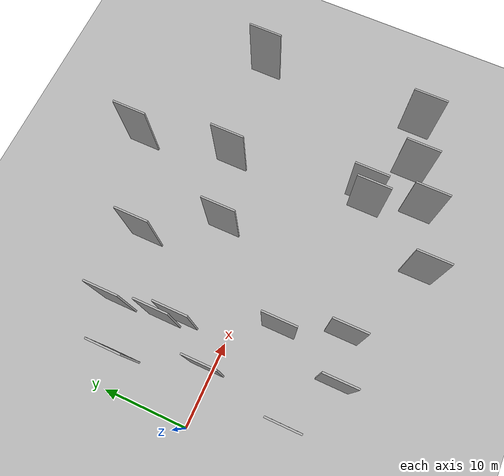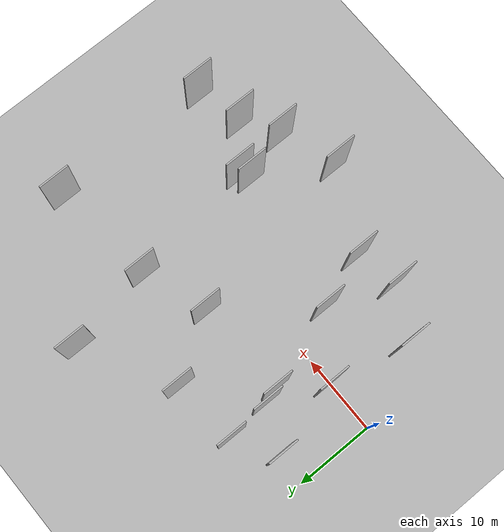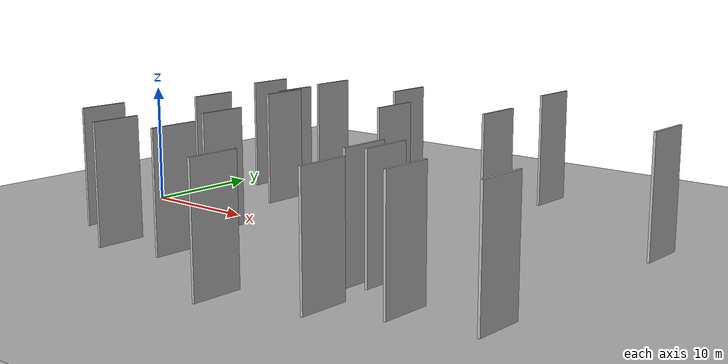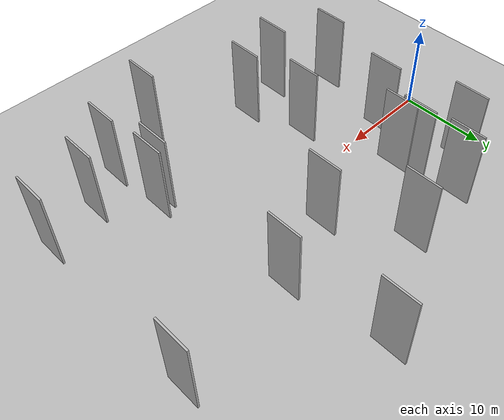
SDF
<?xml version="1.0" encoding="utf-8"?>

<sdf version="1.6">

   <world name="default">

      <gui fullscreen="0">

         <camera name="user_camera">

            <pose>-15 0 4.57585 0 0 0</pose>

            <view_controller>orbit</view_controller>

         </camera>

      </gui>

      <scene>

         <sky>

           <clouds>

             <speed>12</speed>

           </clouds>

         </sky>

         <ambient>0.4 0.4 0.4 1</ambient>

         <background>0.7 0.7 0.7 1</background>

         <shadows>1</shadows>

      </scene>

      <gravity>0 0 -9.8066</gravity>

      <magnetic_field>6e-06 2.3e-05 -4.2e-05</magnetic_field>

      <physics default="0" name="default_physics" type="ode">

         <ode>

            <solver>

               <type>quick</type>

               <iters>10</iters>

               <sor>1.0</sor>

               <use_dynamic_moi_rescaling>0</use_dynamic_moi_rescaling>

            </solver>

            <constraints>

               <cfm>0</cfm>

               <erp>0.2</erp>

               <contact_max_correcting_vel>100</contact_max_correcting_vel>

               <contact_surface_layer>0.001</contact_surface_layer>

            </constraints>

         </ode>

         <max_step_size>0.004</max_step_size>

         <real_time_factor>1</real_time_factor>

         <real_time_update_rate>250</real_time_update_rate>

      </physics>

      <light name="sun" type="directional">

         <cast_shadows>1</cast_shadows>

         <pose>0 0 10 0 0 0</pose>

         <diffuse>0.8 0.8 0.8 1</diffuse>

         <specular>0.2 0.2 0.2 1</specular>

         <attenuation>

            <range>1000</range>

            <constant>0.9</constant>

            <linear>0.01</linear>

            <quadratic>0.001</quadratic>

         </attenuation>

         <direction>-0.5 0.1 -0.9</direction>

      </light>

      <include>

         <name>ground_plane_1</name>

         <uri>model://HANNAS_ground_plane</uri>

         <pose>0 0 0  0 0 0</pose>

      </include>

      <include>

         <name>ground_plane_2</name>

         <uri>model://HANNAS_ground_plane</uri>

         <pose>100 0 0  0 0 0</pose>

      </include>

      <model name="HANNAS_wall_1">

         <static>1</static>

         <pose frame="">37.4713 -11.7446 0.0 0.000000 0.000000 1.570796</pose>

         <link name="link">

            <pose frame="">0 0 5.00 0 0 0</pose>

            <collision name="collision">

               <geometry>

                  <box>

                     <size>4.00 0.2 10.00</size>

                  </box>

               </geometry>

               <max_contacts>10</max_contacts>

               <surface>

                  <contact>

                     <ode/>

                  </contact>

                  <bounce/>

                  <friction>

                     <torsional>

                        <ode/>

                     </torsional>

                     <ode/>

                  </friction>

               </surface>

            </collision>

            <visual name="visual">

               <cast_shadows>0</cast_shadows>

               <geometry>

                  <box>

                     <size>4.00 0.2 10.00</size>

                  </box>

               </geometry>

               <material>

                  <script>

                     <uri>model://HANNAS_wall/materials/scripts</uri>

                     <uri>model://HANNAS_wall/materials/textures</uri>

                     <name>vrc/HANNAS_wall</name>

                  </script>

               </material>

            </visual>

            <self_collide>0</self_collide>

            <enable_wind>0</enable_wind>

            <kinematic>0</kinematic>

         </link>

      </model>

      <model name="HANNAS_wall_2">

         <static>1</static>

         <pose frame="">31.2483 -8.3936 0.0 0.000000 0.000000 1.570796</pose>

         <link name="link">

            <pose frame="">0 0 5.00 0 0 0</pose>

            <collision name="collision">

               <geometry>

                  <box>

                     <size>4.00 0.2 10.00</size>

                  </box>

               </geometry>

               <max_contacts>10</max_contacts>

               <surface>

                  <contact>

                     <ode/>

                  </contact>

                  <bounce/>

                  <friction>

                     <torsional>

                        <ode/>

                     </torsional>

                     <ode/>

                  </friction>

               </surface>

            </collision>

            <visual name="visual">

               <cast_shadows>0</cast_shadows>

               <geometry>

                  <box>

                     <size>4.00 0.2 10.00</size>

                  </box>

               </geometry>

               <material>

                  <script>

                     <uri>model://HANNAS_wall/materials/scripts</uri>

                     <uri>model://HANNAS_wall/materials/textures</uri>

                     <name>vrc/HANNAS_wall</name>

                  </script>

               </material>

            </visual>

            <self_collide>0</self_collide>

            <enable_wind>0</enable_wind>

            <kinematic>0</kinematic>

         </link>

      </model>

      <model name="HANNAS_wall_3">

         <static>1</static>

         <pose frame="">32.4895 -7.6483 0.0 0.000000 0.000000 1.570796</pose>

         <link name="link">

            <pose frame="">0 0 5.00 0 0 0</pose>

            <collision name="collision">

               <geometry>

                  <box>

                     <size>4.00 0.2 10.00</size>

                  </box>

               </geometry>

               <max_contacts>10</max_contacts>

               <surface>

                  <contact>

                     <ode/>

                  </contact>

                  <bounce/>

                  <friction>

                     <torsional>

                        <ode/>

                     </torsional>

                     <ode/>

                  </friction>

               </surface>

            </collision>

            <visual name="visual">

               <cast_shadows>0</cast_shadows>

               <geometry>

                  <box>

                     <size>4.00 0.2 10.00</size>

                  </box>

               </geometry>

               <material>

                  <script>

                     <uri>model://HANNAS_wall/materials/scripts</uri>

                     <uri>model://HANNAS_wall/materials/textures</uri>

                     <name>vrc/HANNAS_wall</name>

                  </script>

               </material>

            </visual>

            <self_collide>0</self_collide>

            <enable_wind>0</enable_wind>

            <kinematic>0</kinematic>

         </link>

      </model>

      <model name="HANNAS_wall_4">

         <static>1</static>

         <pose frame="">43.5361 -10.4436 0.0 0.000000 0.000000 1.570796</pose>

         <link name="link">

            <pose frame="">0 0 5.00 0 0 0</pose>

            <collision name="collision">

               <geometry>

                  <box>

                     <size>4.00 0.2 10.00</size>

                  </box>

               </geometry>

               <max_contacts>10</max_contacts>

               <surface>

                  <contact>

                     <ode/>

                  </contact>

                  <bounce/>

                  <friction>

                     <torsional>

                        <ode/>

                     </torsional>

                     <ode/>

                  </friction>

               </surface>

            </collision>

            <visual name="visual">

               <cast_shadows>0</cast_shadows>

               <geometry>

                  <box>

                     <size>4.00 0.2 10.00</size>

                  </box>

               </geometry>

               <material>

                  <script>

                     <uri>model://HANNAS_wall/materials/scripts</uri>

                     <uri>model://HANNAS_wall/materials/textures</uri>

                     <name>vrc/HANNAS_wall</name>

                  </script>

               </material>

            </visual>

            <self_collide>0</self_collide>

            <enable_wind>0</enable_wind>

            <kinematic>0</kinematic>

         </link>

      </model>

      <model name="HANNAS_wall_5">

         <static>1</static>

         <pose frame="">33.0475 -14.4032 0.0 0.000000 0.000000 1.570796</pose>

         <link name="link">

            <pose frame="">0 0 5.00 0 0 0</pose>

            <collision name="collision">

               <geometry>

                  <box>

                     <size>4.00 0.2 10.00</size>

                  </box>

               </geometry>

               <max_contacts>10</max_contacts>

               <surface>

                  <contact>

                     <ode/>

                  </contact>

                  <bounce/>

                  <friction>

                     <torsional>

                        <ode/>

                     </torsional>

                     <ode/>

                  </friction>

               </surface>

            </collision>

            <visual name="visual">

               <cast_shadows>0</cast_shadows>

               <geometry>

                  <box>

                     <size>4.00 0.2 10.00</size>

                  </box>

               </geometry>

               <material>

                  <script>

                     <uri>model://HANNAS_wall/materials/scripts</uri>

                     <uri>model://HANNAS_wall/materials/textures</uri>

                     <name>vrc/HANNAS_wall</name>

                  </script>

               </material>

            </visual>

            <self_collide>0</self_collide>

            <enable_wind>0</enable_wind>

            <kinematic>0</kinematic>

         </link>

      </model>

      <model name="HANNAS_wall_6">

         <static>1</static>

         <pose frame="">22.1428 5.8418 0.0 0.000000 0.000000 1.570796</pose>

         <link name="link">

            <pose frame="">0 0 5.00 0 0 0</pose>

            <collision name="collision">

               <geometry>

                  <box>

                     <size>4.00 0.2 10.00</size>

                  </box>

               </geometry>

               <max_contacts>10</max_contacts>

               <surface>

                  <contact>

                     <ode/>

                  </contact>

                  <bounce/>

                  <friction>

                     <torsional>

                        <ode/>

                     </torsional>

                     <ode/>

                  </friction>

               </surface>

            </collision>

            <visual name="visual">

               <cast_shadows>0</cast_shadows>

               <geometry>

                  <box>

                     <size>4.00 0.2 10.00</size>

                  </box>

               </geometry>

               <material>

                  <script>

                     <uri>model://HANNAS_wall/materials/scripts</uri>

                     <uri>model://HANNAS_wall/materials/textures</uri>

                     <name>vrc/HANNAS_wall</name>

                  </script>

               </material>

            </visual>

            <self_collide>0</self_collide>

            <enable_wind>0</enable_wind>

            <kinematic>0</kinematic>

         </link>

      </model>

      <model name="HANNAS_wall_7">

         <static>1</static>

         <pose frame="">6.6601 0.4806 0.0 0.000000 0.000000 1.570796</pose>

         <link name="link">

            <pose frame="">0 0 5.00 0 0 0</pose>

            <collision name="collision">

               <geometry>

                  <box>

                     <size>4.00 0.2 10.00</size>

                  </box>

               </geometry>

               <max_contacts>10</max_contacts>

               <surface>

                  <contact>

                     <ode/>

                  </contact>

                  <bounce/>

                  <friction>

                     <torsional>

                        <ode/>

                     </torsional>

                     <ode/>

                  </friction>

               </surface>

            </collision>

            <visual name="visual">

               <cast_shadows>0</cast_shadows>

               <geometry>

                  <box>

                     <size>4.00 0.2 10.00</size>

                  </box>

               </geometry>

               <material>

                  <script>

                     <uri>model://HANNAS_wall/materials/scripts</uri>

                     <uri>model://HANNAS_wall/materials/textures</uri>

                     <name>vrc/HANNAS_wall</name>

                  </script>

               </material>

            </visual>

            <self_collide>0</self_collide>

            <enable_wind>0</enable_wind>

            <kinematic>0</kinematic>

         </link>

      </model>

      <model name="HANNAS_wall_8">

         <static>1</static>

         <pose frame="">13.7146 -4.9886 0.0 0.000000 0.000000 1.570796</pose>

         <link name="link">

            <pose frame="">0 0 5.00 0 0 0</pose>

            <collision name="collision">

               <geometry>

                  <box>

                     <size>4.00 0.2 10.00</size>

                  </box>

               </geometry>

               <max_contacts>10</max_contacts>

               <surface>

                  <contact>

                     <ode/>

                  </contact>

                  <bounce/>

                  <friction>

                     <torsional>

                        <ode/>

                     </torsional>

                     <ode/>

                  </friction>

               </surface>

            </collision>

            <visual name="visual">

               <cast_shadows>0</cast_shadows>

               <geometry>

                  <box>

                     <size>4.00 0.2 10.00</size>

                  </box>

               </geometry>

               <material>

                  <script>

                     <uri>model://HANNAS_wall/materials/scripts</uri>

                     <uri>model://HANNAS_wall/materials/textures</uri>

                     <name>vrc/HANNAS_wall</name>

                  </script>

               </material>

            </visual>

            <self_collide>0</self_collide>

            <enable_wind>0</enable_wind>

            <kinematic>0</kinematic>

         </link>

      </model>

      <model name="HANNAS_wall_9">

         <static>1</static>

         <pose frame="">28.3567 19.8073 0.0 0.000000 0.000000 1.570796</pose>

         <link name="link">

            <pose frame="">0 0 5.00 0 0 0</pose>

            <collision name="collision">

               <geometry>

                  <box>

                     <size>4.00 0.2 10.00</size>

                  </box>

               </geometry>

               <max_contacts>10</max_contacts>

               <surface>

                  <contact>

                     <ode/>

                  </contact>

                  <bounce/>

                  <friction>

                     <torsional>

                        <ode/>

                     </torsional>

                     <ode/>

                  </friction>

               </surface>

            </collision>

            <visual name="visual">

               <cast_shadows>0</cast_shadows>

               <geometry>

                  <box>

                     <size>4.00 0.2 10.00</size>

                  </box>

               </geometry>

               <material>

                  <script>

                     <uri>model://HANNAS_wall/materials/scripts</uri>

                     <uri>model://HANNAS_wall/materials/textures</uri>

                     <name>vrc/HANNAS_wall</name>

                  </script>

               </material>

            </visual>

            <self_collide>0</self_collide>

            <enable_wind>0</enable_wind>

            <kinematic>0</kinematic>

         </link>

      </model>

      <model name="HANNAS_wall_10">

         <static>1</static>

         <pose frame="">4.6491 -9.3726 0.0 0.000000 0.000000 1.570796</pose>

         <link name="link">

            <pose frame="">0 0 5.00 0 0 0</pose>

            <collision name="collision">

               <geometry>

                  <box>

                     <size>4.00 0.2 10.00</size>

                  </box>

               </geometry>

               <max_contacts>10</max_contacts>

               <surface>

                  <contact>

                     <ode/>

                  </contact>

                  <bounce/>

                  <friction>

                     <torsional>

                        <ode/>

                     </torsional>

                     <ode/>

                  </friction>

               </surface>

            </collision>

            <visual name="visual">

               <cast_shadows>0</cast_shadows>

               <geometry>

                  <box>

                     <size>4.00 0.2 10.00</size>

                  </box>

               </geometry>

               <material>

                  <script>

                     <uri>model://HANNAS_wall/materials/scripts</uri>

                     <uri>model://HANNAS_wall/materials/textures</uri>

                     <name>vrc/HANNAS_wall</name>

                  </script>

               </material>

            </visual>

            <self_collide>0</self_collide>

            <enable_wind>0</enable_wind>

            <kinematic>0</kinematic>

         </link>

      </model>

      <model name="HANNAS_wall_11">

         <static>1</static>

         <pose frame="">15.9942 -11.7543 0.0 0.000000 0.000000 1.570796</pose>

         <link name="link">

            <pose frame="">0 0 5.00 0 0 0</pose>

            <collision name="collision">

               <geometry>

                  <box>

                     <size>4.00 0.2 10.00</size>

                  </box>

               </geometry>

               <max_contacts>10</max_contacts>

               <surface>

                  <contact>

                     <ode/>

                  </contact>

                  <bounce/>

                  <friction>

                     <torsional>

                        <ode/>

                     </torsional>

                     <ode/>

                  </friction>

               </surface>

            </collision>

            <visual name="visual">

               <cast_shadows>0</cast_shadows>

               <geometry>

                  <box>

                     <size>4.00 0.2 10.00</size>

                  </box>

               </geometry>

               <material>

                  <script>

                     <uri>model://HANNAS_wall/materials/scripts</uri>

                     <uri>model://HANNAS_wall/materials/textures</uri>

                     <name>vrc/HANNAS_wall</name>

                  </script>

               </material>

            </visual>

            <self_collide>0</self_collide>

            <enable_wind>0</enable_wind>

            <kinematic>0</kinematic>

         </link>

      </model>

      <model name="HANNAS_wall_12">

         <static>1</static>

         <pose frame="">30.2491 8.6233 0.0 0.000000 0.000000 1.570796</pose>

         <link name="link">

            <pose frame="">0 0 5.00 0 0 0</pose>

            <collision name="collision">

               <geometry>

                  <box>

                     <size>4.00 0.2 10.00</size>

                  </box>

               </geometry>

               <max_contacts>10</max_contacts>

               <surface>

                  <contact>

                     <ode/>

                  </contact>

                  <bounce/>

                  <friction>

                     <torsional>

                        <ode/>

                     </torsional>

                     <ode/>

                  </friction>

               </surface>

            </collision>

            <visual name="visual">

               <cast_shadows>0</cast_shadows>

               <geometry>

                  <box>

                     <size>4.00 0.2 10.00</size>

                  </box>

               </geometry>

               <material>

                  <script>

                     <uri>model://HANNAS_wall/materials/scripts</uri>

                     <uri>model://HANNAS_wall/materials/textures</uri>

                     <name>vrc/HANNAS_wall</name>

                  </script>

               </material>

            </visual>

            <self_collide>0</self_collide>

            <enable_wind>0</enable_wind>

            <kinematic>0</kinematic>

         </link>

      </model>

      <model name="HANNAS_wall_13">

         <static>1</static>

         <pose frame="">26.0266 -17.0154 0.0 0.000000 0.000000 1.570796</pose>

         <link name="link">

            <pose frame="">0 0 5.00 0 0 0</pose>

            <collision name="collision">

               <geometry>

                  <box>

                     <size>4.00 0.2 10.00</size>

                  </box>

               </geometry>

               <max_contacts>10</max_contacts>

               <surface>

                  <contact>

                     <ode/>

                  </contact>

                  <bounce/>

                  <friction>

                     <torsional>

                        <ode/>

                     </torsional>

                     <ode/>

                  </friction>

               </surface>

            </collision>

            <visual name="visual">

               <cast_shadows>0</cast_shadows>

               <geometry>

                  <box>

                     <size>4.00 0.2 10.00</size>

                  </box>

               </geometry>

               <material>

                  <script>

                     <uri>model://HANNAS_wall/materials/scripts</uri>

                     <uri>model://HANNAS_wall/materials/textures</uri>

                     <name>vrc/HANNAS_wall</name>

                  </script>

               </material>

            </visual>

            <self_collide>0</self_collide>

            <enable_wind>0</enable_wind>

            <kinematic>0</kinematic>

         </link>

      </model>

      <model name="HANNAS_wall_14">

         <static>1</static>

         <pose frame="">9.5945 7.3463 0.0 0.000000 0.000000 1.570796</pose>

         <link name="link">

            <pose frame="">0 0 5.00 0 0 0</pose>

            <collision name="collision">

               <geometry>

                  <box>

                     <size>4.00 0.2 10.00</size>

                  </box>

               </geometry>

               <max_contacts>10</max_contacts>

               <surface>

                  <contact>

                     <ode/>

                  </contact>

                  <bounce/>

                  <friction>

                     <torsional>

                        <ode/>

                     </torsional>

                     <ode/>

                  </friction>

               </surface>

            </collision>

            <visual name="visual">

               <cast_shadows>0</cast_shadows>

               <geometry>

                  <box>

                     <size>4.00 0.2 10.00</size>

                  </box>

               </geometry>

               <material>

                  <script>

                     <uri>model://HANNAS_wall/materials/scripts</uri>

                     <uri>model://HANNAS_wall/materials/textures</uri>

                     <name>vrc/HANNAS_wall</name>

                  </script>

               </material>

            </visual>

            <self_collide>0</self_collide>

            <enable_wind>0</enable_wind>

            <kinematic>0</kinematic>

         </link>

      </model>

      <model name="HANNAS_wall_15">

         <static>1</static>

         <pose frame="">17.3526 13.6794 0.0 0.000000 0.000000 1.570796</pose>

         <link name="link">

            <pose frame="">0 0 5.00 0 0 0</pose>

            <collision name="collision">

               <geometry>

                  <box>

                     <size>4.00 0.2 10.00</size>

                  </box>

               </geometry>

               <max_contacts>10</max_contacts>

               <surface>

                  <contact>

                     <ode/>

                  </contact>

                  <bounce/>

                  <friction>

                     <torsional>

                        <ode/>

                     </torsional>

                     <ode/>

                  </friction>

               </surface>

            </collision>

            <visual name="visual">

               <cast_shadows>0</cast_shadows>

               <geometry>

                  <box>

                     <size>4.00 0.2 10.00</size>

                  </box>

               </geometry>

               <material>

                  <script>

                     <uri>model://HANNAS_wall/materials/scripts</uri>

                     <uri>model://HANNAS_wall/materials/textures</uri>

                     <name>vrc/HANNAS_wall</name>

                  </script>

               </material>

            </visual>

            <self_collide>0</self_collide>

            <enable_wind>0</enable_wind>

            <kinematic>0</kinematic>

         </link>

      </model>

      <model name="HANNAS_wall_16">

         <static>1</static>

         <pose frame="">43.7637 10.0674 0.0 0.000000 0.000000 1.570796</pose>

         <link name="link">

            <pose frame="">0 0 5.00 0 0 0</pose>

            <collision name="collision">

               <geometry>

                  <box>

                     <size>4.00 0.2 10.00</size>

                  </box>

               </geometry>

               <max_contacts>10</max_contacts>

               <surface>

                  <contact>

                     <ode/>

                  </contact>

                  <bounce/>

                  <friction>

                     <torsional>

                        <ode/>

                     </torsional>

                     <ode/>

                  </friction>

               </surface>

            </collision>

            <visual name="visual">

               <cast_shadows>0</cast_shadows>

               <geometry>

                  <box>

                     <size>4.00 0.2 10.00</size>

                  </box>

               </geometry>

               <material>

                  <script>

                     <uri>model://HANNAS_wall/materials/scripts</uri>

                     <uri>model://HANNAS_wall/materials/textures</uri>

                     <name>vrc/HANNAS_wall</name>

                  </script>

               </material>

            </visual>

            <self_collide>0</self_collide>

            <enable_wind>0</enable_wind>

            <kinematic>0</kinematic>

         </link>

      </model>

      <model name="HANNAS_wall_17">

         <static>1</static>

         <pose frame="">4.1692 9.7640 0.0 0.000000 0.000000 1.570796</pose>

         <link name="link">

            <pose frame="">0 0 5.00 0 0 0</pose>

            <collision name="collision">

               <geometry>

                  <box>

                     <size>4.00 0.2 10.00</size>

                  </box>

               </geometry>

               <max_contacts>10</max_contacts>

               <surface>

                  <contact>

                     <ode/>

                  </contact>

                  <bounce/>

                  <friction>

                     <torsional>

                        <ode/>

                     </torsional>

                     <ode/>

                  </friction>

               </surface>

            </collision>

            <visual name="visual">

               <cast_shadows>0</cast_shadows>

               <geometry>

                  <box>

                     <size>4.00 0.2 10.00</size>

                  </box>

               </geometry>

               <material>

                  <script>

                     <uri>model://HANNAS_wall/materials/scripts</uri>

                     <uri>model://HANNAS_wall/materials/textures</uri>

                     <name>vrc/HANNAS_wall</name>

                  </script>

               </material>

            </visual>

            <self_collide>0</self_collide>

            <enable_wind>0</enable_wind>

            <kinematic>0</kinematic>

         </link>

      </model>

      <model name="HANNAS_wall_18">

         <static>1</static>

         <pose frame="">10.1768 5.4675 0.0 0.000000 0.000000 1.570796</pose>

         <link name="link">

            <pose frame="">0 0 5.00 0 0 0</pose>

            <collision name="collision">

               <geometry>

                  <box>

                     <size>4.00 0.2 10.00</size>

                  </box>

               </geometry>

               <max_contacts>10</max_contacts>

               <surface>

                  <contact>

                     <ode/>

                  </contact>

                  <bounce/>

                  <friction>

                     <torsional>

                        <ode/>

                     </torsional>

                     <ode/>

                  </friction>

               </surface>

            </collision>

            <visual name="visual">

               <cast_shadows>0</cast_shadows>

               <geometry>

                  <box>

                     <size>4.00 0.2 10.00</size>

                  </box>

               </geometry>

               <material>

                  <script>

                     <uri>model://HANNAS_wall/materials/scripts</uri>

                     <uri>model://HANNAS_wall/materials/textures</uri>

                     <name>vrc/HANNAS_wall</name>

                  </script>

               </material>

            </visual>

            <self_collide>0</self_collide>

            <enable_wind>0</enable_wind>

            <kinematic>0</kinematic>

         </link>

      </model>

      <model name="HANNAS_wall_19">

         <static>1</static>

         <pose frame="">9.1594 12.8045 0.0 0.000000 0.000000 1.570796</pose>

         <link name="link">

            <pose frame="">0 0 5.00 0 0 0</pose>

            <collision name="collision">

               <geometry>

                  <box>

                     <size>4.00 0.2 10.00</size>

                  </box>

               </geometry>

               <max_contacts>10</max_contacts>

               <surface>

                  <contact>

                     <ode/>

                  </contact>

                  <bounce/>

                  <friction>

                     <torsional>

                        <ode/>

                     </torsional>

                     <ode/>

                  </friction>

               </surface>

            </collision>

            <visual name="visual">

               <cast_shadows>0</cast_shadows>

               <geometry>

                  <box>

                     <size>4.00 0.2 10.00</size>

                  </box>

               </geometry>

               <material>

                  <script>

                     <uri>model://HANNAS_wall/materials/scripts</uri>

                     <uri>model://HANNAS_wall/materials/textures</uri>

                     <name>vrc/HANNAS_wall</name>

                  </script>

               </material>

            </visual>

            <self_collide>0</self_collide>

            <enable_wind>0</enable_wind>

            <kinematic>0</kinematic>

         </link>

      </model>

      <model name="HANNAS_wall_20">

         <static>1</static>

         <pose frame="">10.6747 -12.8249 0.0 0.000000 0.000000 1.570796</pose>

         <link name="link">

            <pose frame="">0 0 5.00 0 0 0</pose>

            <collision name="collision">

               <geometry>

                  <box>

                     <size>4.00 0.2 10.00</size>

                  </box>

               </geometry>

               <max_contacts>10</max_contacts>

               <surface>

                  <contact>

                     <ode/>

                  </contact>

                  <bounce/>

                  <friction>

                     <torsional>

                        <ode/>

                     </torsional>

                     <ode/>

                  </friction>

               </surface>

            </collision>

            <visual name="visual">

               <cast_shadows>0</cast_shadows>

               <geometry>

                  <box>

                     <size>4.00 0.2 10.00</size>

                  </box>

               </geometry>

               <material>

                  <script>

                     <uri>model://HANNAS_wall/materials/scripts</uri>

                     <uri>model://HANNAS_wall/materials/textures</uri>

                     <name>vrc/HANNAS_wall</name>

                  </script>

               </material>

            </visual>

            <self_collide>0</self_collide>

            <enable_wind>0</enable_wind>

            <kinematic>0</kinematic>

         </link>

      </model>

   </world>

</sdf>

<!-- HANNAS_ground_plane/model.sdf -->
<sdf version="1.4">
<model name="HANNAS_ground_plane">
  <static>true</static>
    <link name="link">
      <collision name="collision">
        <geometry>
          <plane>
            <normal>0 0 1</normal>
            <size>1000 1000</size>
          </plane>
        </geometry>
        <surface>
          <friction>
            <ode>
              <mu>100</mu>
              <mu2>50</mu2>
            </ode>
          </friction>
        </surface>
      </collision>
      <visual name="visual">
        <cast_shadows>false</cast_shadows>
        <geometry>
          <plane>
            <normal>0 0 1</normal>
            <size>1000 1000</size>
          </plane>
        </geometry>
        <material>
          <script>
            <uri>model://HANNAS_ground_plane/materials/scripts/HANNAS_ground_plane.material</uri>
	    <uri>model://HANNAS_ground_plane/materials/textures</uri>
            <name>HANNASGroundPlane/Image</name>
          </script>
        </material>
      </visual>
    </link>
  </model>
</sdf>
